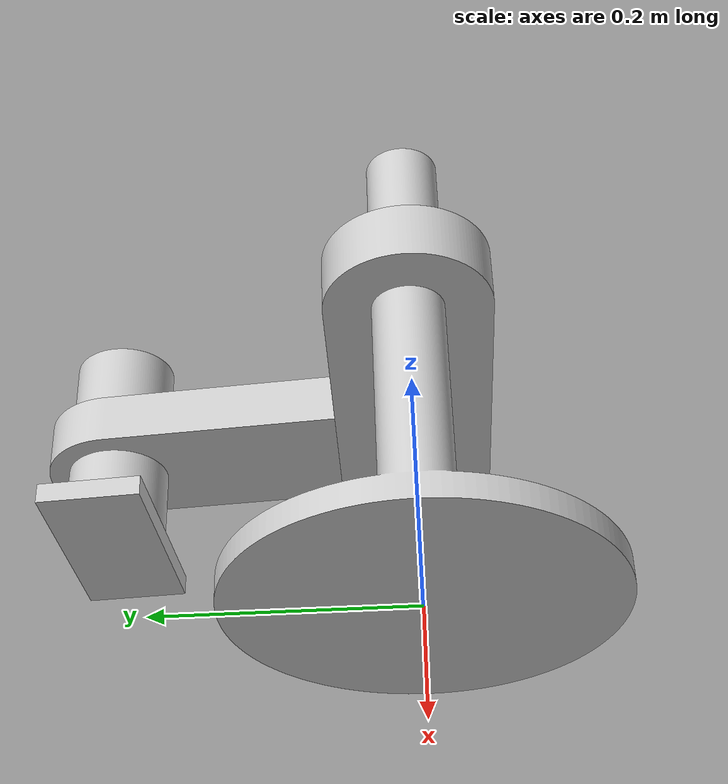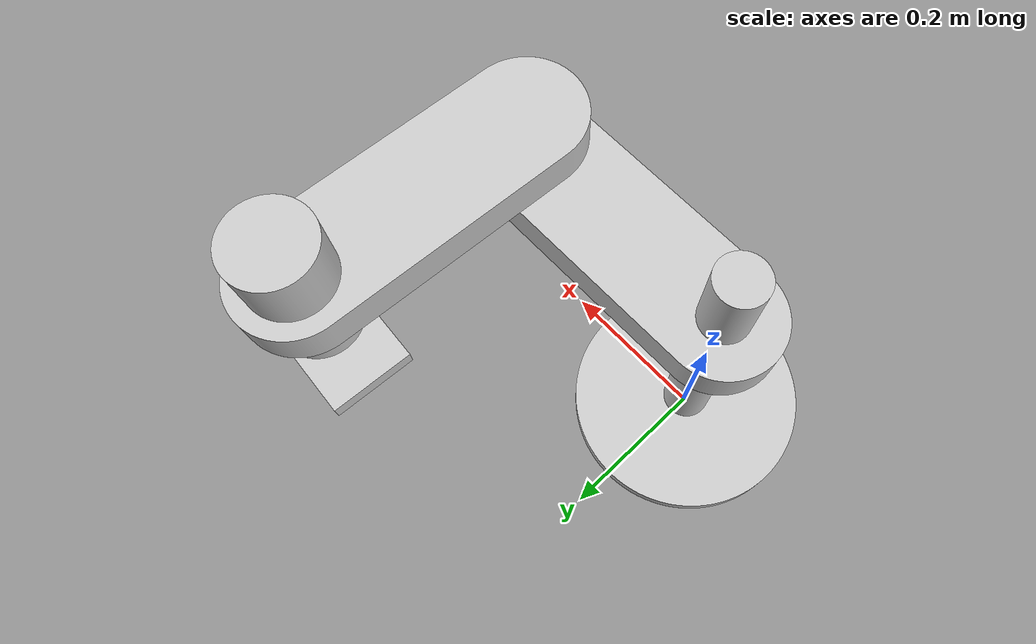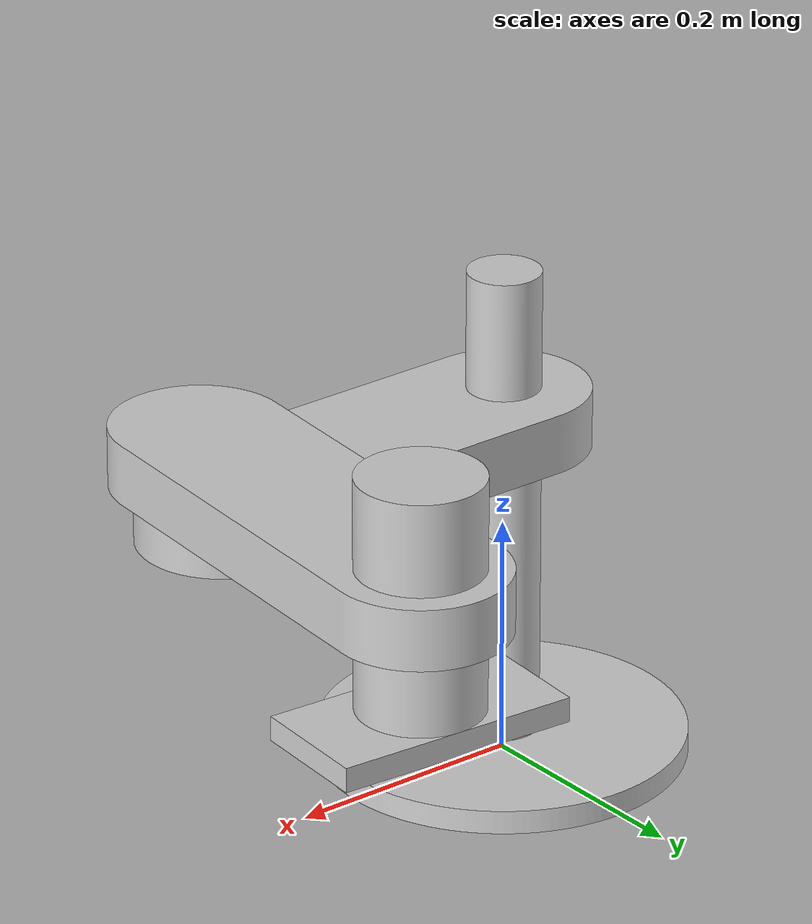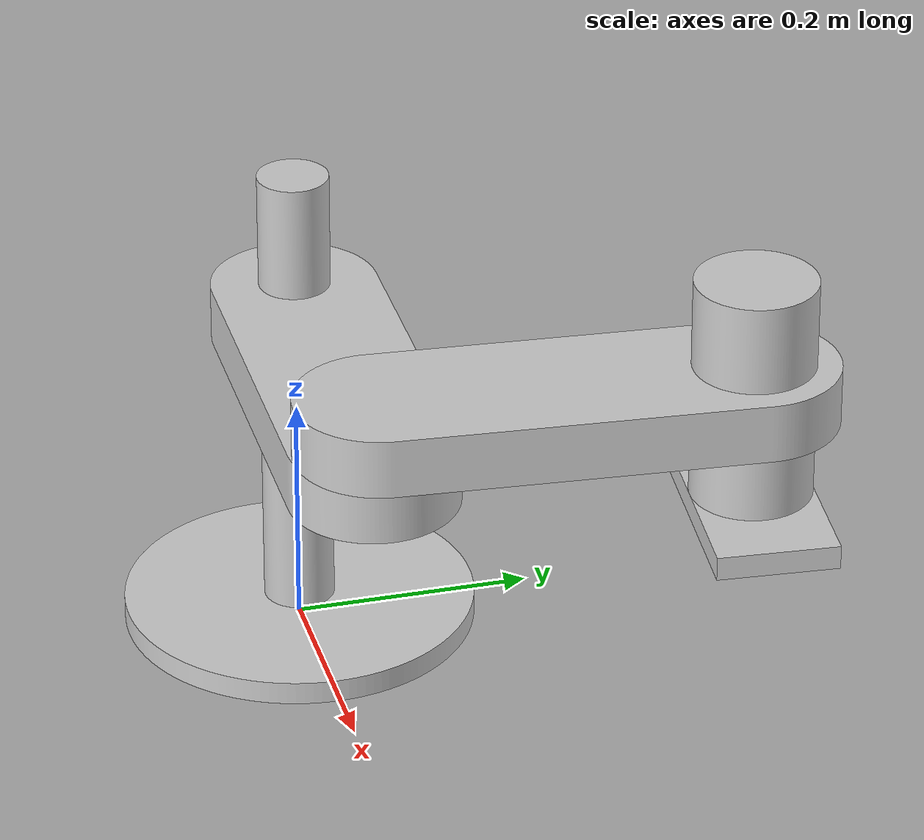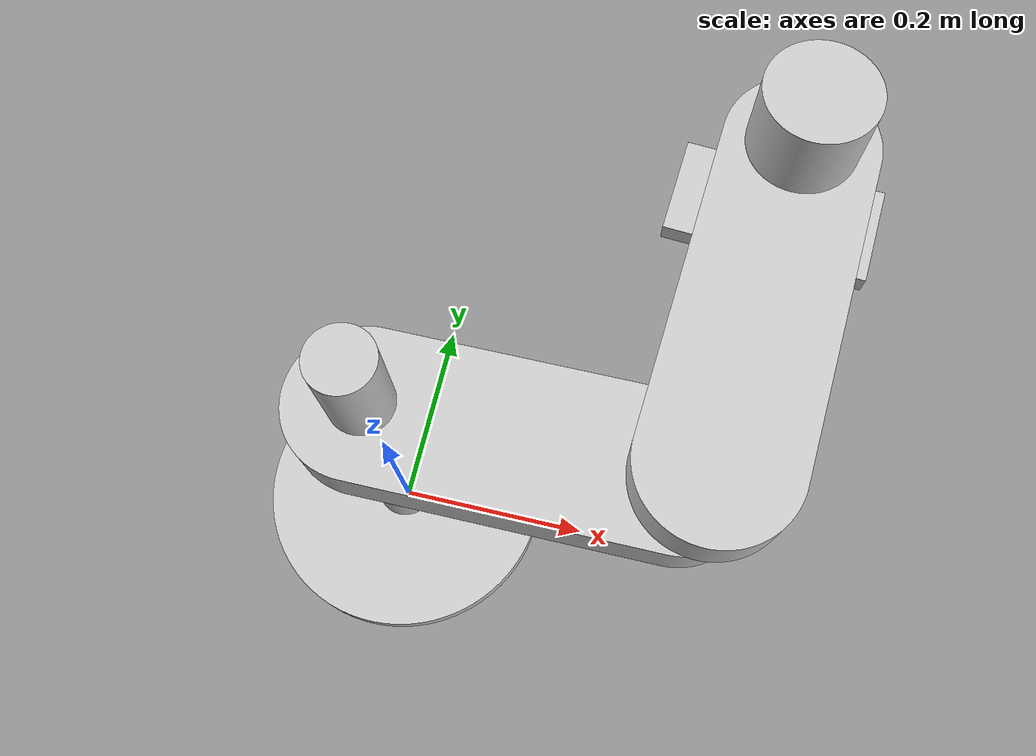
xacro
<?xml version ="1.0"?>
<robot xmlns:xacro="http://www.ros.org/wiki/xacro" name="RRP">
    <link name="base_link"></link>
    <link name="link0">
        <visual>
            <geometry>
                <mesh filename="file://$(find rl_robot)/meshes/RRP_robot_Extrude_link0.dae"/>
            </geometry>
        </visual>
        <collision>
            <geometry>
                <mesh filename="file://$(find rl_robot)/meshes/RRP_robot_Extrude_link0.dae"/>
            </geometry>
        </collision>
    </link>
    <joint name="base_joint" type = "fixed">
        <parent link = "base_link"/>
        <child link = "link0"/>
        <origin xyz = "0 0 0"/>
        <dynamics damping="10.0" friction="10.0"/>
    </joint>

    <link name="link1">
        <visual>
            <geometry>
                <mesh filename="file://$(find rl_robot)/meshes/RRP_robot_Extrude_link1.dae"/>
            </geometry>
        </visual>
        <collision>
            <geometry>
                <mesh filename="file://$(find rl_robot)/meshes/RRP_robot_Extrude_link1.dae"/>
            </geometry>
        </collision>
    </link>

    <joint name="joint_1" type = "revolute">
        <parent link = "link0"/>
        <child link = "link1"/>
        <origin xyz = "0 0 0.3"/>
        <axis xyz="0 0 1"/>
        <limit upper="3" lower="-3" effort="0.1" velocity="0.1"/>
        <dynamics damping="10.0" friction="10.0"/>
    </joint>

    <link name="link2">
        <visual>
            <geometry>
                <mesh filename="file://$(find rl_robot)/meshes/RRP_robot_Extrude_link2.dae"/>
            </geometry>
        </visual>
        <collision>
            <geometry>
                <mesh filename="file://$(find rl_robot)/meshes/RRP_robot_Extrude_link2.dae"/>
            </geometry>
        </collision>
    </link>

    <joint name="joint_2" type = "revolute">
        <parent link = "link1"/>
        <child link = "link2"/>
        <origin xyz = "0.3 0 0.05"/>
        <axis xyz="0 0 1"/>
        <limit upper="2" lower="1" effort="0.1" velocity="0.1"/>
        <dynamics damping="10.0" friction="10.0"/>
    </joint>

    <link name="link3">
        <visual>
            <geometry>
                <mesh filename="file://$(find rl_robot)/meshes/RRP_robot_Extrude_link3.dae"/>
            </geometry>
            <origin xyz = "0 0 0"/>
        </visual>
        <collision>
            <geometry>
                <mesh filename="file://$(find rl_robot)/meshes/RRP_robot_Extrude_link3.dae"/>
            </geometry>
            <origin xyz = "0 0 0"/>
        </collision>
    </link>

    <joint name="joint_end" type = "prismatic">
        <parent link = "link2"/>
        <child link = "link3"/>
        <origin xyz = "0.3 0 0"/>
        <axis xyz="0 0 1"/>
        <limit upper="0.05" lower="-0.1" effort="0.1" velocity="0.1"/>
        <dynamics damping="10.0" friction="10.0"/>
    </joint>

    <link name="end_effector">
        <visual>
            <geometry>
                <mesh filename="file://$(find rl_robot)/meshes/RRP_robot_Extrude_end.dae"/>
            </geometry>
            <origin xyz = "0 0 0"/>
        </visual>
        <collision>
            <geometry>
                <mesh filename="file://$(find rl_robot)/meshes/RRP_robot_Extrude_end.dae"/>
            </geometry>
            <origin xyz = "0 0 0"/>
        </collision>
    </link>

    <joint name="link length" type = "fixed">
        <parent link = "link3"/>
        <child link = "end_effector"/>
        <origin xyz = "0 0 -0.11"/>
        <dynamics damping="10.0" friction="10.0"/>
    </joint>

</robot>
